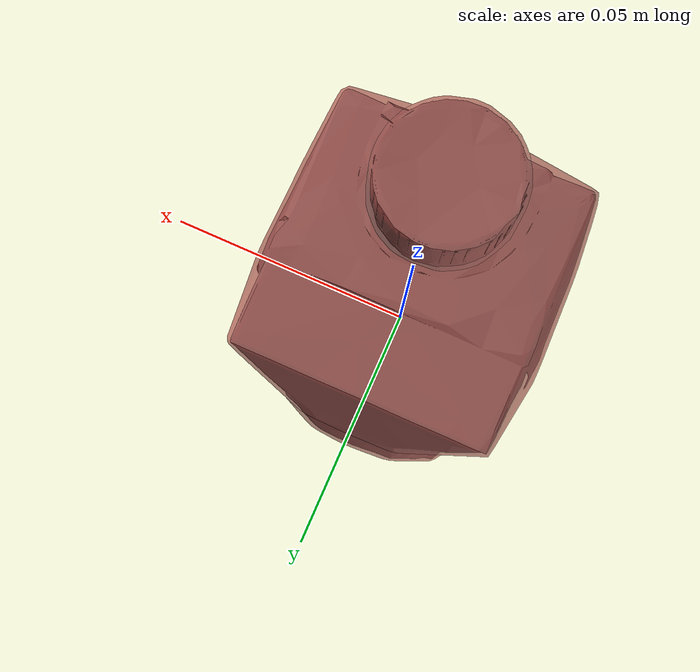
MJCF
<?xml version='1.0' encoding='utf-8'?>
<mujoco model="milk_33">
  <asset>
    <mesh file="visual/model_normalized_0.obj" name="model_normalized_0_vis" scale="0.11999999999999991 0.11999999999999991 0.11999999999999991" refquat="1.0 0.0 0.0 0.0" />
    <texture type="2d" name="image0" file="visual/image0.png" />
    <material name="lambert2.001" texture="image0" specular="0.5" shininess="0.25" />
    <mesh file="collision/collision_mesh_collision_0.obj" name="milk_collision_mesh_0" scale="0.11999999999999991 0.11999999999999991 0.11999999999999991" refquat="1.0 0.0 0.0 0.0" />
    <mesh file="collision/collision_mesh_collision_1.obj" name="milk_collision_mesh_1" scale="0.11999999999999991 0.11999999999999991 0.11999999999999991" refquat="1.0 0.0 0.0 0.0" />
    <mesh file="collision/collision_mesh_collision_2.obj" name="milk_collision_mesh_2" scale="0.11999999999999991 0.11999999999999991 0.11999999999999991" refquat="1.0 0.0 0.0 0.0" />
  </asset>
  <default>
    <default class="region">
      <geom group="1" conaffinity="0" contype="0" rgba="0 1 0 0" mass="0" />
    </default>
    <default class="collision">
      <geom group="0" rgba="0.5 0 0 0.5" density="1770.216134385" />
    </default>
  </default>
  <worldbody>
    <body>
      <body name="object">
        <geom solimp="0.998 0.998 0.001" solref="0.001 1" density="177.021613438" friction="0.95 0.3 0.1" type="mesh" mesh="model_normalized_0_vis" conaffinity="0" contype="0" group="1" material="lambert2.001" />
        <geom class="region" name="reg_bbox" type="box" pos="-2.5798200000000084e-05 -2.5409999999997915e-06 -3.286619999999682e-05" size="0.026955388199999982 0.027797561399999976 0.060622036199999965" />
        <geom mesh="milk_collision_mesh_0" type="mesh" class="collision" />
        <geom mesh="milk_collision_mesh_1" type="mesh" class="collision" />
        <geom mesh="milk_collision_mesh_2" type="mesh" class="collision" />
      </body>
    </body>
  </worldbody>
</mujoco>
